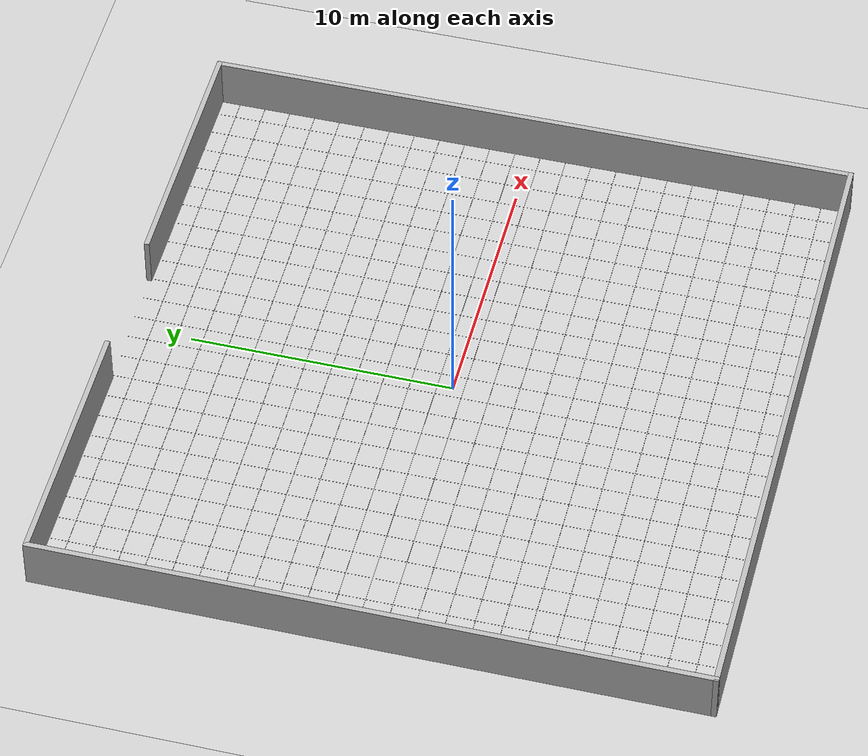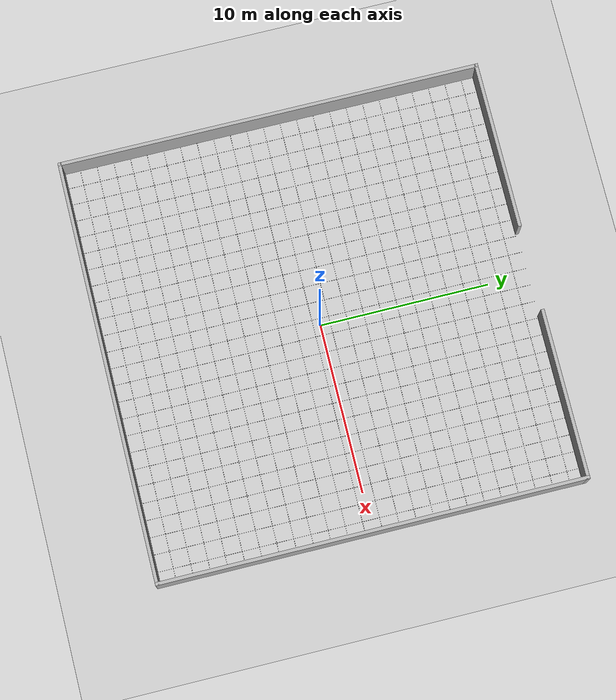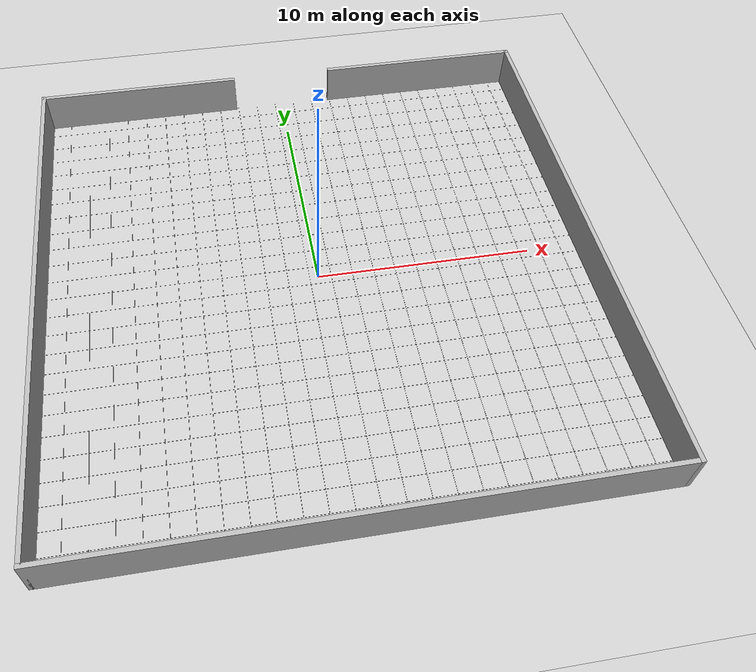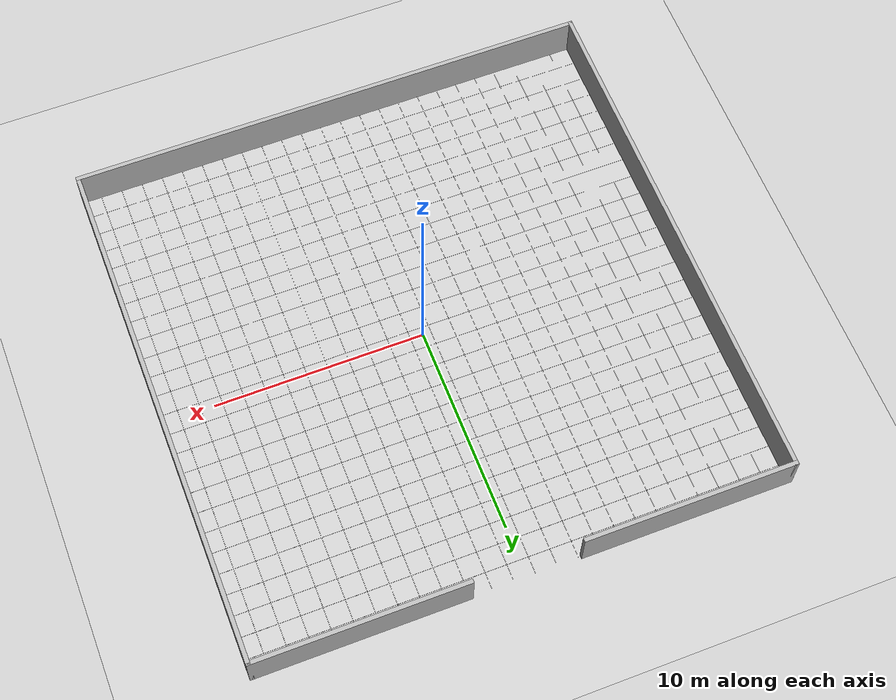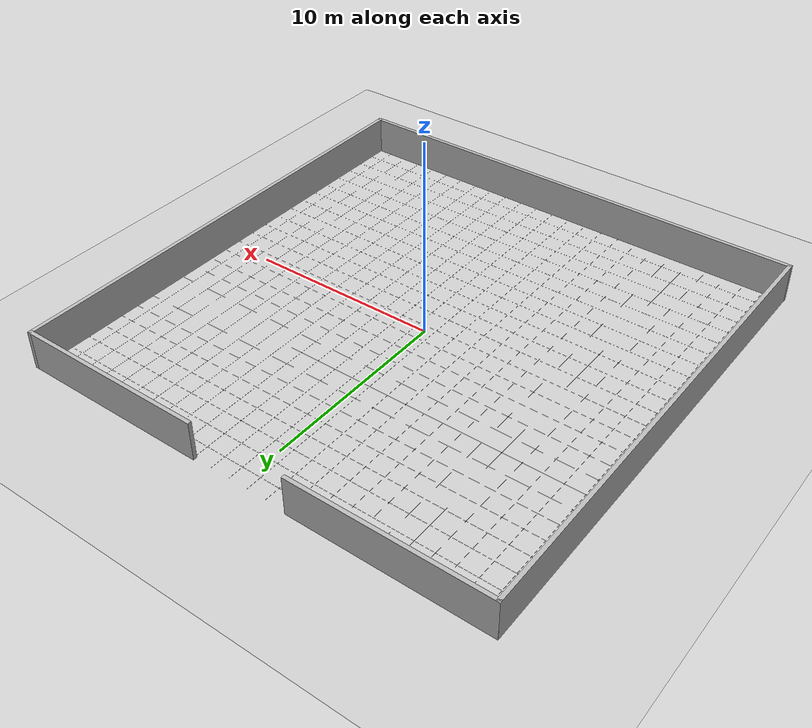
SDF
<?xml version="1.0" ?>
<sdf version="1.7">
  <world name="default">
    <!-- Light source for Gazebo Garden -->
    <light type="directional" name="sun">
      <cast_shadows>true</cast_shadows>
      <pose>0 0 10 0 0 0</pose>
      <diffuse>0.8 0.8 0.8 1</diffuse>
      <specular>0.2 0.2 0.2 1</specular>
      <attenuation>
        <range>1000</range>
        <constant>0.9</constant>
        <linear>0.01</linear>
        <quadratic>0.001</quadratic>
      </attenuation>
      <direction>-0.5 0.1 -0.9</direction>
    </light>

    <!-- Ground plane -->
    <model name="ground_plane">
      <static>true</static>
      <link name="link">
        <collision name="collision">
          <geometry>
            <plane>
              <normal>0 0 1</normal>
              <size>80 80</size>
            </plane>
          </geometry>
          <surface>
            <friction>
              <ode>
                <mu>100</mu>
                <mu2>50</mu2>
              </ode>
            </friction>
          </surface>
        </collision>
        <visual name="visual">
          <geometry>
            <plane>
              <normal>0 0 1</normal>
              <size>100 100</size>
            </plane>
          </geometry>
          <material>
            <script>
              <uri>file://media/materials/scripts/gazebo.material</uri>
              <name>Gazebo/Grey</name>
            </script>
          </material>
        </visual>
      </link>
    </model>

    <!-- Building structure -->

    <!-- OUTER WALLS -->

    <!-- Left wall -->
    <model name="front_wall1">
      <pose>-7.5 12.4 1 0 0 0</pose>
      <static>false</static>
      <allow_auto_disable>true</allow_auto_disable>
      <link name="link">
        <collision name="collision">
          <geometry>
            <box>
              <size>10 0.2 2</size>
            </box>
          </geometry>
        </collision>
        <visual name="visual">
          <geometry>
            <box>
              <size>10 0.2 2</size>
            </box>
          </geometry>
          <material>
            <script>
              <uri>file://media/materials/scripts/gazebo.material</uri>
              <name>Gazebo/Brick</name>
            </script>
          </material>
        </visual>
        <inertial>
          <mass>800</mass>
          <inertia>
            <ixx>269.47</ixx>
            <ixy>0</ixy>
            <ixz>0</ixz>
            <iyy>26933.33</iyy>
            <iyz>0</iyz>
            <izz>26669.33</izz>
          </inertia>
        </inertial>
      </link>
    </model>

    <model name="front_wall2">
      <pose>7.5 12.4 1 0 0 0</pose>
      <static>false</static>
      <allow_auto_disable>true</allow_auto_disable>
      <link name="link">
        <collision name="collision">
          <geometry>
            <box>
              <size>10 0.2 2</size>
            </box>
          </geometry>
        </collision>
        <visual name="visual">
          <geometry>
            <box>
              <size>10 0.2 2</size>
            </box>
          </geometry>
          <material>
            <script>
              <uri>file://media/materials/scripts/gazebo.material</uri>
              <name>Gazebo/Brick</name>
            </script>
          </material>
        </visual>
        <inertial>
          <mass>800</mass>
          <inertia>
            <ixx>269.47</ixx>
            <ixy>0</ixy>
            <ixz>0</ixz>
            <iyy>26933.33</iyy>
            <iyz>0</iyz>
            <izz>26669.33</izz>
          </inertia>
        </inertial>
      </link>
    </model>

      <model name="back_wall">
      <pose>0 -12.4 1 0 0 0</pose>
      <static>false</static>
      <allow_auto_disable>true</allow_auto_disable>
      <link name="link">
        <collision name="collision">
          <geometry>
            <box>
              <size>25 0.2 2</size>
            </box>
          </geometry>
        </collision>
        <visual name="visual">
          <geometry>
            <box>
              <size>25 0.2 2</size>
            </box>
          </geometry>
          <material>
            <script>
              <uri>file://media/materials/scripts/gazebo.material</uri>
              <name>Gazebo/Brick</name>
            </script>
          </material>
        </visual>
        <inertial>
          <mass>800</mass>
          <inertia>
            <ixx>269.47</ixx>
            <ixy>0</ixy>
            <ixz>0</ixz>
            <iyy>26933.33</iyy>
            <iyz>0</iyz>
            <izz>26669.33</izz>
          </inertia>
        </inertial>
      </link>
    </model>

    <model name="right_wall">
      <pose>12.4 0 1 0 0 1.5708</pose>
      <static>false</static>
      <allow_auto_disable>true</allow_auto_disable>
      <link name="link">
        <collision name="collision">
          <geometry>
            <box>
              <size>25 0.2 2</size>
            </box>
          </geometry>
        </collision>
        <visual name="visual">
          <geometry>
            <box>
              <size>25 0.2 2</size>
            </box>
          </geometry>
          <material>
            <script>
              <uri>file://media/materials/scripts/gazebo.material</uri>
              <name>Gazebo/Brick</name>
            </script>
          </material>
        </visual>
        <inertial>
          <mass>800</mass>
          <inertia>
            <ixx>269.47</ixx>
            <ixy>0</ixy>
            <ixz>0</ixz>
            <iyy>26933.33</iyy>
            <iyz>0</iyz>
            <izz>26669.33</izz>
          </inertia>
        </inertial>
      </link>
    </model>

        <model name="left_wall">
      <pose>-12.4 0 1 0 0 1.5708</pose>
      <static>false</static>
      <allow_auto_disable>true</allow_auto_disable>
      <link name="link">
        <collision name="collision">
          <geometry>
            <box>
              <size>25 0.2 2</size>
            </box>
          </geometry>
        </collision>
        <visual name="visual">
          <geometry>
            <box>
              <size>25 0.2 2</size>
            </box>
          </geometry>
          <material>
            <script>
              <uri>file://media/materials/scripts/gazebo.material</uri>
              <name>Gazebo/Brick</name>
            </script>
          </material>
        </visual>
        <inertial>
          <mass>800</mass>
          <inertia>
            <ixx>269.47</ixx>
            <ixy>0</ixy>
            <ixz>0</ixz>
            <iyy>26933.33</iyy>
            <iyz>0</iyz>
            <izz>26669.33</izz>
          </inertia>
        </inertial>
      </link>
    </model>

    <!-- Physics settings -->
    <physics name="default" type="ode">
      <max_step_size>0.001</max_step_size>
      <real_time_factor>1.0</real_time_factor>
      <real_time_update_rate>1000</real_time_update_rate>
    </physics>

    <!-- Gravity -->
    <gravity>0 0 -9.8066</gravity>

    <!-- Gazebo Garden/Ignition plugins -->
    <plugin
      filename="gz-sim-physics-system"
      name="gz::sim::systems::Physics">
    </plugin>

    <plugin
      filename="gz-sim-user-commands-system"
      name="gz::sim::systems::UserCommands">
    </plugin>

    <plugin
      filename="gz-sim-scene-broadcaster-system"
      name="gz::sim::systems::SceneBroadcaster">
    </plugin>

    <plugin
      filename="gz-sim-sensors-system"
      name="gz::sim::systems::Sensors">
      <render_engine>ogre2</render_engine>
    </plugin>

    <plugin
      filename="gz-sim-gui-system"
      name="gz::sim::systems::Gui">
    </plugin>

    <!-- ROS 2 Bridge plugin -->
    <plugin
      filename="gz-sim-ros2-system"
      name="gz::sim::systems::ROS2">
      <ros_version>2</ros_version>
    </plugin>

    <!-- Grid matching the walls (24.8m x 24.8m area) -->
    <!-- Create grid lines at 1m intervals to match wall layout -->
    <!-- Horizontal grid lines (along X axis) at Y positions from -12.4 to 12.4 -->

    <model name="grid_h_-12.4">
      <static>true</static>
      <pose>0 -12.4 0.01 0 0 0</pose>
      <link name="link">
        <visual name="visual">
          <geometry>
            <box>
              <size>24.8 0.01 0.001</size>
            </box>
          </geometry>
          <material>
            <ambient>0.2 0.2 0.2 0.6</ambient>
            <diffuse>0.2 0.2 0.2 0.6</diffuse>
          </material>
        </visual>
      </link>
    </model>
    <model name="grid_h_-11.4">
      <static>true</static>
      <pose>0 -11.4 0.01 0 0 0</pose>
      <link name="link">
        <visual name="visual">
          <geometry>
            <box>
              <size>24.8 0.01 0.001</size>
            </box>
          </geometry>
          <material>
            <ambient>0.2 0.2 0.2 0.6</ambient>
            <diffuse>0.2 0.2 0.2 0.6</diffuse>
          </material>
        </visual>
      </link>
    </model>
    <model name="grid_h_-10.4">
      <static>true</static>
      <pose>0 -10.4 0.01 0 0 0</pose>
      <link name="link">
        <visual name="visual">
          <geometry>
            <box>
              <size>24.8 0.01 0.001</size>
            </box>
          </geometry>
          <material>
            <ambient>0.2 0.2 0.2 0.6</ambient>
            <diffuse>0.2 0.2 0.2 0.6</diffuse>
          </material>
        </visual>
      </link>
    </model>
    <model name="grid_h_-9.4">
      <static>true</static>
      <pose>0 -9.4 0.01 0 0 0</pose>
      <link name="link">
        <visual name="visual">
          <geometry>
            <box>
              <size>24.8 0.01 0.001</size>
            </box>
          </geometry>
          <material>
            <ambient>0.2 0.2 0.2 0.6</ambient>
            <diffuse>0.2 0.2 0.2 0.6</diffuse>
          </material>
        </visual>
      </link>
    </model>
    <model name="grid_h_-8.4">
      <static>true</static>
      <pose>0 -8.4 0.01 0 0 0</pose>
      <link name="link">
        <visual name="visual">
          <geometry>
            <box>
              <size>24.8 0.01 0.001</size>
            </box>
          </geometry>
          <material>
            <ambient>0.2 0.2 0.2 0.6</ambient>
            <diffuse>0.2 0.2 0.2 0.6</diffuse>
          </material>
        </visual>
      </link>
    </model>
    <model name="grid_h_-7.4">
      <static>true</static>
      <pose>0 -7.4 0.01 0 0 0</pose>
      <link name="link">
        <visual name="visual">
          <geometry>
            <box>
              <size>24.8 0.01 0.001</size>
            </box>
          </geometry>
          <material>
            <ambient>0.2 0.2 0.2 0.6</ambient>
            <diffuse>0.2 0.2 0.2 0.6</diffuse>
          </material>
        </visual>
      </link>
    </model>
    <model name="grid_h_-6.4">
      <static>true</static>
      <pose>0 -6.4 0.01 0 0 0</pose>
      <link name="link">
        <visual name="visual">
          <geometry>
            <box>
              <size>24.8 0.01 0.001</size>
            </box>
          </geometry>
          <material>
            <ambient>0.2 0.2 0.2 0.6</ambient>
            <diffuse>0.2 0.2 0.2 0.6</diffuse>
          </material>
        </visual>
      </link>
    </model>
    <model name="grid_h_-5.4">
      <static>true</static>
      <pose>0 -5.4 0.01 0 0 0</pose>
      <link name="link">
        <visual name="visual">
          <geometry>
            <box>
              <size>24.8 0.01 0.001</size>
            </box>
          </geometry>
          <material>
            <ambient>0.2 0.2 0.2 0.6</ambient>
            <diffuse>0.2 0.2 0.2 0.6</diffuse>
          </material>
        </visual>
      </link>
    </model>
    <model name="grid_h_-4.4">
      <static>true</static>
      <pose>0 -4.4 0.01 0 0 0</pose>
      <link name="link">
        <visual name="visual">
          <geometry>
            <box>
              <size>24.8 0.01 0.001</size>
            </box>
          </geometry>
          <material>
            <ambient>0.2 0.2 0.2 0.6</ambient>
            <diffuse>0.2 0.2 0.2 0.6</diffuse>
          </material>
        </visual>
      </link>
    </model>
    <model name="grid_h_-3.4">
      <static>true</static>
      <pose>0 -3.4 0.01 0 0 0</pose>
      <link name="link">
        <visual name="visual">
          <geometry>
            <box>
              <size>24.8 0.01 0.001</size>
            </box>
          </geometry>
          <material>
            <ambient>0.2 0.2 0.2 0.6</ambient>
            <diffuse>0.2 0.2 0.2 0.6</diffuse>
          </material>
        </visual>
      </link>
    </model>
    <model name="grid_h_-2.4">
      <static>true</static>
      <pose>0 -2.4 0.01 0 0 0</pose>
      <link name="link">
        <visual name="visual">
          <geometry>
            <box>
              <size>24.8 0.01 0.001</size>
            </box>
          </geometry>
          <material>
            <ambient>0.2 0.2 0.2 0.6</ambient>
            <diffuse>0.2 0.2 0.2 0.6</diffuse>
          </material>
        </visual>
      </link>
    </model>
    <model name="grid_h_-1.4">
      <static>true</static>
      <pose>0 -1.4 0.01 0 0 0</pose>
      <link name="link">
        <visual name="visual">
          <geometry>
            <box>
              <size>24.8 0.01 0.001</size>
            </box>
          </geometry>
          <material>
            <ambient>0.2 0.2 0.2 0.6</ambient>
            <diffuse>0.2 0.2 0.2 0.6</diffuse>
          </material>
        </visual>
      </link>
    </model>
    <model name="grid_h_-0.4">
      <static>true</static>
      <pose>0 -0.4 0.01 0 0 0</pose>
      <link name="link">
        <visual name="visual">
          <geometry>
            <box>
              <size>24.8 0.01 0.001</size>
            </box>
          </geometry>
          <material>
            <ambient>0.2 0.2 0.2 0.6</ambient>
            <diffuse>0.2 0.2 0.2 0.6</diffuse>
          </material>
        </visual>
      </link>
    </model>
    <model name="grid_h_0.6">
      <static>true</static>
      <pose>0 0.6 0.01 0 0 0</pose>
      <link name="link">
        <visual name="visual">
          <geometry>
            <box>
              <size>24.8 0.01 0.001</size>
            </box>
          </geometry>
          <material>
            <ambient>0.2 0.2 0.2 0.6</ambient>
            <diffuse>0.2 0.2 0.2 0.6</diffuse>
          </material>
        </visual>
      </link>
    </model>
    <model name="grid_h_1.6">
      <static>true</static>
      <pose>0 1.6 0.01 0 0 0</pose>
      <link name="link">
        <visual name="visual">
          <geometry>
            <box>
              <size>24.8 0.01 0.001</size>
            </box>
          </geometry>
          <material>
            <ambient>0.2 0.2 0.2 0.6</ambient>
            <diffuse>0.2 0.2 0.2 0.6</diffuse>
          </material>
        </visual>
      </link>
    </model>
    <model name="grid_h_2.6">
      <static>true</static>
      <pose>0 2.6 0.01 0 0 0</pose>
      <link name="link">
        <visual name="visual">
          <geometry>
            <box>
              <size>24.8 0.01 0.001</size>
            </box>
          </geometry>
          <material>
            <ambient>0.2 0.2 0.2 0.6</ambient>
            <diffuse>0.2 0.2 0.2 0.6</diffuse>
          </material>
        </visual>
      </link>
    </model>
    <model name="grid_h_3.6">
      <static>true</static>
      <pose>0 3.6 0.01 0 0 0</pose>
      <link name="link">
        <visual name="visual">
          <geometry>
            <box>
              <size>24.8 0.01 0.001</size>
            </box>
          </geometry>
          <material>
            <ambient>0.2 0.2 0.2 0.6</ambient>
            <diffuse>0.2 0.2 0.2 0.6</diffuse>
          </material>
        </visual>
      </link>
    </model>
    <model name="grid_h_4.6">
      <static>true</static>
      <pose>0 4.6 0.01 0 0 0</pose>
      <link name="link">
        <visual name="visual">
          <geometry>
            <box>
              <size>24.8 0.01 0.001</size>
            </box>
          </geometry>
          <material>
            <ambient>0.2 0.2 0.2 0.6</ambient>
            <diffuse>0.2 0.2 0.2 0.6</diffuse>
          </material>
        </visual>
      </link>
    </model>
    <model name="grid_h_5.6">
      <static>true</static>
      <pose>0 5.6 0.01 0 0 0</pose>
      <link name="link">
        <visual name="visual">
          <geometry>
            <box>
              <size>24.8 0.01 0.001</size>
            </box>
          </geometry>
          <material>
            <ambient>0.2 0.2 0.2 0.6</ambient>
            <diffuse>0.2 0.2 0.2 0.6</diffuse>
          </material>
        </visual>
      </link>
    </model>
    <model name="grid_h_6.6">
      <static>true</static>
      <pose>0 6.6 0.01 0 0 0</pose>
      <link name="link">
        <visual name="visual">
          <geometry>
            <box>
              <size>24.8 0.01 0.001</size>
            </box>
          </geometry>
          <material>
            <ambient>0.2 0.2 0.2 0.6</ambient>
            <diffuse>0.2 0.2 0.2 0.6</diffuse>
          </material>
        </visual>
      </link>
    </model>
    <model name="grid_h_7.6">
      <static>true</static>
      <pose>0 7.6 0.01 0 0 0</pose>
      <link name="link">
        <visual name="visual">
          <geometry>
            <box>
              <size>24.8 0.01 0.001</size>
            </box>
          </geometry>
          <material>
            <ambient>0.2 0.2 0.2 0.6</ambient>
            <diffuse>0.2 0.2 0.2 0.6</diffuse>
          </material>
        </visual>
      </link>
    </model>
    <model name="grid_h_8.6">
      <static>true</static>
      <pose>0 8.6 0.01 0 0 0</pose>
      <link name="link">
        <visual name="visual">
          <geometry>
            <box>
              <size>24.8 0.01 0.001</size>
            </box>
          </geometry>
          <material>
            <ambient>0.2 0.2 0.2 0.6</ambient>
            <diffuse>0.2 0.2 0.2 0.6</diffuse>
          </material>
        </visual>
      </link>
    </model>
    <model name="grid_h_9.6">
      <static>true</static>
      <pose>0 9.6 0.01 0 0 0</pose>
      <link name="link">
        <visual name="visual">
          <geometry>
            <box>
              <size>24.8 0.01 0.001</size>
            </box>
          </geometry>
          <material>
            <ambient>0.2 0.2 0.2 0.6</ambient>
            <diffuse>0.2 0.2 0.2 0.6</diffuse>
          </material>
        </visual>
      </link>
    </model>
    <model name="grid_h_10.6">
      <static>true</static>
      <pose>0 10.6 0.01 0 0 0</pose>
      <link name="link">
        <visual name="visual">
          <geometry>
            <box>
              <size>24.8 0.01 0.001</size>
            </box>
          </geometry>
          <material>
            <ambient>0.2 0.2 0.2 0.6</ambient>
            <diffuse>0.2 0.2 0.2 0.6</diffuse>
          </material>
        </visual>
      </link>
    </model>
    <model name="grid_h_11.6">
      <static>true</static>
      <pose>0 11.6 0.01 0 0 0</pose>
      <link name="link">
        <visual name="visual">
          <geometry>
            <box>
              <size>24.8 0.01 0.001</size>
            </box>
          </geometry>
          <material>
            <ambient>0.2 0.2 0.2 0.6</ambient>
            <diffuse>0.2 0.2 0.2 0.6</diffuse>
          </material>
        </visual>
      </link>
    </model>
    <model name="grid_v_-12.4">
      <static>true</static>
      <pose>-12.4 0 0.01 0 0 1.5708</pose>
      <link name="link">
        <visual name="visual">
          <geometry>
            <box>
              <size>24.8 0.01 0.001</size>
            </box>
          </geometry>
          <material>
            <ambient>0.2 0.2 0.2 0.6</ambient>
            <diffuse>0.2 0.2 0.2 0.6</diffuse>
          </material>
        </visual>
      </link>
    </model>
    <model name="grid_v_-11.4">
      <static>true</static>
      <pose>-11.4 0 0.01 0 0 1.5708</pose>
      <link name="link">
        <visual name="visual">
          <geometry>
            <box>
              <size>24.8 0.01 0.001</size>
            </box>
          </geometry>
          <material>
            <ambient>0.2 0.2 0.2 0.6</ambient>
            <diffuse>0.2 0.2 0.2 0.6</diffuse>
          </material>
        </visual>
      </link>
    </model>
    <model name="grid_v_-10.4">
      <static>true</static>
      <pose>-10.4 0 0.01 0 0 1.5708</pose>
      <link name="link">
        <visual name="visual">
          <geometry>
            <box>
              <size>24.8 0.01 0.001</size>
            </box>
          </geometry>
          <material>
            <ambient>0.2 0.2 0.2 0.6</ambient>
            <diffuse>0.2 0.2 0.2 0.6</diffuse>
          </material>
        </visual>
      </link>
    </model>
    <model name="grid_v_-9.4">
      <static>true</static>
      <pose>-9.4 0 0.01 0 0 1.5708</pose>
      <link name="link">
        <visual name="visual">
          <geometry>
            <box>
              <size>24.8 0.01 0.001</size>
            </box>
          </geometry>
          <material>
            <ambient>0.2 0.2 0.2 0.6</ambient>
            <diffuse>0.2 0.2 0.2 0.6</diffuse>
          </material>
        </visual>
      </link>
    </model>
    <model name="grid_v_-8.4">
      <static>true</static>
      <pose>-8.4 0 0.01 0 0 1.5708</pose>
      <link name="link">
        <visual name="visual">
          <geometry>
            <box>
              <size>24.8 0.01 0.001</size>
            </box>
          </geometry>
          <material>
            <ambient>0.2 0.2 0.2 0.6</ambient>
            <diffuse>0.2 0.2 0.2 0.6</diffuse>
          </material>
        </visual>
      </link>
    </model>
    <model name="grid_v_-7.4">
      <static>true</static>
      <pose>-7.4 0 0.01 0 0 1.5708</pose>
      <link name="link">
        <visual name="visual">
          <geometry>
            <box>
              <size>24.8 0.01 0.001</size>
            </box>
          </geometry>
          <material>
            <ambient>0.2 0.2 0.2 0.6</ambient>
            <diffuse>0.2 0.2 0.2 0.6</diffuse>
          </material>
        </visual>
      </link>
    </model>
    <model name="grid_v_-6.4">
      <static>true</static>
      <pose>-6.4 0 0.01 0 0 1.5708</pose>
      <link name="link">
        <visual name="visual">
          <geometry>
            <box>
              <size>24.8 0.01 0.001</size>
            </box>
          </geometry>
          <material>
            <ambient>0.2 0.2 0.2 0.6</ambient>
            <diffuse>0.2 0.2 0.2 0.6</diffuse>
          </material>
        </visual>
      </link>
    </model>
    <model name="grid_v_-5.4">
      <static>true</static>
      <pose>-5.4 0 0.01 0 0 1.5708</pose>
      <link name="link">
        <visual name="visual">
          <geometry>
            <box>
              <size>24.8 0.01 0.001</size>
            </box>
          </geometry>
          <material>
            <ambient>0.2 0.2 0.2 0.6</ambient>
            <diffuse>0.2 0.2 0.2 0.6</diffuse>
          </material>
        </visual>
      </link>
    </model>
    <model name="grid_v_-4.4">
      <static>true</static>
      <pose>-4.4 0 0.01 0 0 1.5708</pose>
      <link name="link">
        <visual name="visual">
          <geometry>
            <box>
              <size>24.8 0.01 0.001</size>
            </box>
          </geometry>
          <material>
            <ambient>0.2 0.2 0.2 0.6</ambient>
            <diffuse>0.2 0.2 0.2 0.6</diffuse>
          </material>
        </visual>
      </link>
    </model>
    <model name="grid_v_-3.4">
      <static>true</static>
      <pose>-3.4 0 0.01 0 0 1.5708</pose>
      <link name="link">
        <visual name="visual">
          <geometry>
            <box>
              <size>24.8 0.01 0.001</size>
            </box>
          </geometry>
          <material>
            <ambient>0.2 0.2 0.2 0.6</ambient>
            <diffuse>0.2 0.2 0.2 0.6</diffuse>
          </material>
        </visual>
      </link>
    </model>
    <model name="grid_v_-2.4">
      <static>true</static>
      <pose>-2.4 0 0.01 0 0 1.5708</pose>
      <link name="link">
        <visual name="visual">
          <geometry>
            <box>
              <size>24.8 0.01 0.001</size>
            </box>
          </geometry>
          <material>
            <ambient>0.2 0.2 0.2 0.6</ambient>
            <diffuse>0.2 0.2 0.2 0.6</diffuse>
          </material>
        </visual>
      </link>
    </model>
    <model name="grid_v_-1.4">
      <static>true</static>
      <pose>-1.4 0 0.01 0 0 1.5708</pose>
      <link name="link">
        <visual name="visual">
          <geometry>
            <box>
              <size>24.8 0.01 0.001</size>
            </box>
          </geometry>
          <material>
            <ambient>0.2 0.2 0.2 0.6</ambient>
            <diffuse>0.2 0.2 0.2 0.6</diffuse>
          </material>
        </visual>
      </link>
    </model>
    <model name="grid_v_-0.4">
      <static>true</static>
      <pose>-0.4 0 0.01 0 0 1.5708</pose>
      <link name="link">
        <visual name="visual">
          <geometry>
            <box>
              <size>24.8 0.01 0.001</size>
            </box>
          </geometry>
          <material>
            <ambient>0.2 0.2 0.2 0.6</ambient>
            <diffuse>0.2 0.2 0.2 0.6</diffuse>
          </material>
        </visual>
      </link>
    </model>
    <model name="grid_v_0.6">
      <static>true</static>
      <pose>0.6 0 0.01 0 0 1.5708</pose>
      <link name="link">
        <visual name="visual">
          <geometry>
            <box>
              <size>24.8 0.01 0.001</size>
            </box>
          </geometry>
          <material>
            <ambient>0.2 0.2 0.2 0.6</ambient>
            <diffuse>0.2 0.2 0.2 0.6</diffuse>
          </material>
        </visual>
      </link>
    </model>
    <model name="grid_v_1.6">
      <static>true</static>
      <pose>1.6 0 0.01 0 0 1.5708</pose>
      <link name="link">
        <visual name="visual">
          <geometry>
            <box>
              <size>24.8 0.01 0.001</size>
            </box>
          </geometry>
          <material>
            <ambient>0.2 0.2 0.2 0.6</ambient>
            <diffuse>0.2 0.2 0.2 0.6</diffuse>
          </material>
        </visual>
      </link>
    </model>
    <model name="grid_v_2.6">
      <static>true</static>
      <pose>2.6 0 0.01 0 0 1.5708</pose>
      <link name="link">
        <visual name="visual">
          <geometry>
            <box>
              <size>24.8 0.01 0.001</size>
            </box>
          </geometry>
          <material>
            <ambient>0.2 0.2 0.2 0.6</ambient>
            <diffuse>0.2 0.2 0.2 0.6</diffuse>
          </material>
        </visual>
      </link>
    </model>
    <model name="grid_v_3.6">
      <static>true</static>
      <pose>3.6 0 0.01 0 0 1.5708</pose>
      <link name="link">
        <visual name="visual">
          <geometry>
            <box>
              <size>24.8 0.01 0.001</size>
            </box>
          </geometry>
          <material>
            <ambient>0.2 0.2 0.2 0.6</ambient>
            <diffuse>0.2 0.2 0.2 0.6</diffuse>
          </material>
        </visual>
      </link>
    </model>
    <model name="grid_v_4.6">
      <static>true</static>
      <pose>4.6 0 0.01 0 0 1.5708</pose>
      <link name="link">
        <visual name="visual">
          <geometry>
            <box>
              <size>24.8 0.01 0.001</size>
            </box>
          </geometry>
          <material>
            <ambient>0.2 0.2 0.2 0.6</ambient>
            <diffuse>0.2 0.2 0.2 0.6</diffuse>
          </material>
        </visual>
      </link>
    </model>
    <model name="grid_v_5.6">
      <static>true</static>
      <pose>5.6 0 0.01 0 0 1.5708</pose>
      <link name="link">
        <visual name="visual">
          <geometry>
            <box>
              <size>24.8 0.01 0.001</size>
            </box>
          </geometry>
          <material>
            <ambient>0.2 0.2 0.2 0.6</ambient>
            <diffuse>0.2 0.2 0.2 0.6</diffuse>
          </material>
        </visual>
      </link>
    </model>
    <model name="grid_v_6.6">
      <static>true</static>
      <pose>6.6 0 0.01 0 0 1.5708</pose>
      <link name="link">
        <visual name="visual">
          <geometry>
            <box>
              <size>24.8 0.01 0.001</size>
            </box>
          </geometry>
          <material>
            <ambient>0.2 0.2 0.2 0.6</ambient>
            <diffuse>0.2 0.2 0.2 0.6</diffuse>
          </material>
        </visual>
      </link>
    </model>
    <model name="grid_v_7.6">
      <static>true</static>
      <pose>7.6 0 0.01 0 0 1.5708</pose>
      <link name="link">
        <visual name="visual">
          <geometry>
            <box>
              <size>24.8 0.01 0.001</size>
            </box>
          </geometry>
          <material>
            <ambient>0.2 0.2 0.2 0.6</ambient>
            <diffuse>0.2 0.2 0.2 0.6</diffuse>
          </material>
        </visual>
      </link>
    </model>
    <model name="grid_v_8.6">
      <static>true</static>
      <pose>8.6 0 0.01 0 0 1.5708</pose>
      <link name="link">
        <visual name="visual">
          <geometry>
            <box>
              <size>24.8 0.01 0.001</size>
            </box>
          </geometry>
          <material>
            <ambient>0.2 0.2 0.2 0.6</ambient>
            <diffuse>0.2 0.2 0.2 0.6</diffuse>
          </material>
        </visual>
      </link>
    </model>
    <model name="grid_v_9.6">
      <static>true</static>
      <pose>9.6 0 0.01 0 0 1.5708</pose>
      <link name="link">
        <visual name="visual">
          <geometry>
            <box>
              <size>24.8 0.01 0.001</size>
            </box>
          </geometry>
          <material>
            <ambient>0.2 0.2 0.2 0.6</ambient>
            <diffuse>0.2 0.2 0.2 0.6</diffuse>
          </material>
        </visual>
      </link>
    </model>
    <model name="grid_v_10.6">
      <static>true</static>
      <pose>10.6 0 0.01 0 0 1.5708</pose>
      <link name="link">
        <visual name="visual">
          <geometry>
            <box>
              <size>24.8 0.01 0.001</size>
            </box>
          </geometry>
          <material>
            <ambient>0.2 0.2 0.2 0.6</ambient>
            <diffuse>0.2 0.2 0.2 0.6</diffuse>
          </material>
        </visual>
      </link>
    </model>
    <model name="grid_v_11.6">
      <static>true</static>
      <pose>11.6 0 0.01 0 0 1.5708</pose>
      <link name="link">
        <visual name="visual">
          <geometry>
            <box>
              <size>24.8 0.01 0.001</size>
            </box>
          </geometry>
          <material>
            <ambient>0.2 0.2 0.2 0.6</ambient>
            <diffuse>0.2 0.2 0.2 0.6</diffuse>
          </material>
        </visual>
      </link>
    </model>

    <!-- Scene -->
    <scene>
      <ambient>0.4 0.4 0.4 1</ambient>
      <background>0.7 0.7 0.7 1</background>
      <shadows>true</shadows>
      <grid>true</grid>
    </scene>
  </world>
</sdf>
